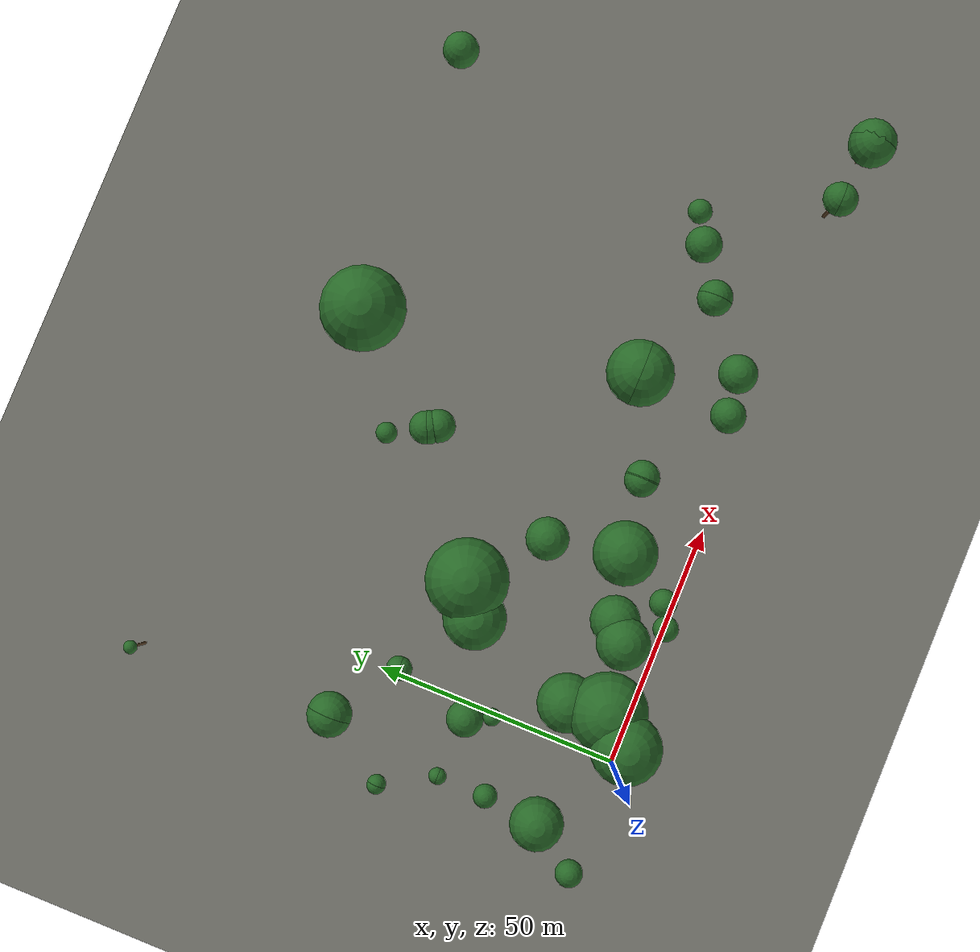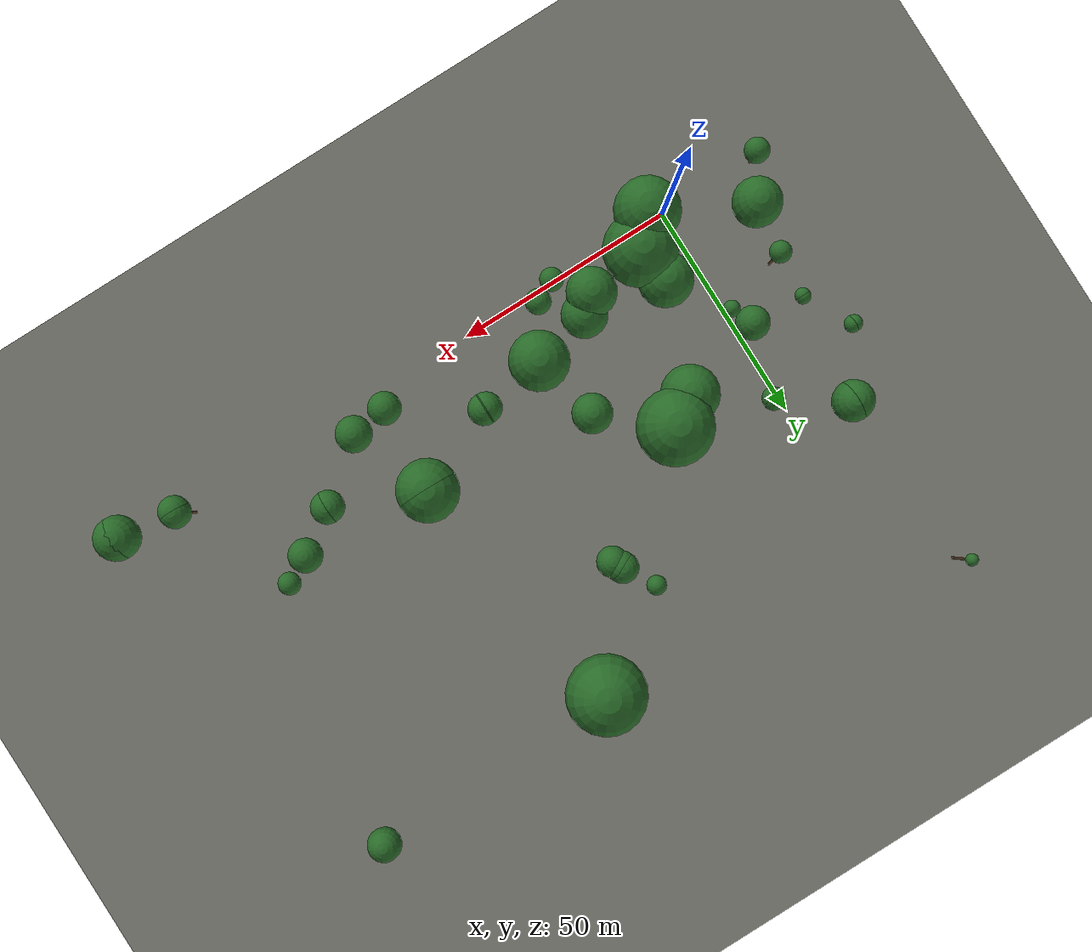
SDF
<sdf version="1.9">
 <world name="uav_arena_bk">
  <model name="ground_plane">
   <static>true</static>
   <link name="link">
    <collision name="collision">
     <geometry><plane><normal>0 0 1</normal><size>1200 1200</size></plane></geometry>
    </collision>
    <visual name="visual">
     <geometry><plane><normal>0 0 1</normal><size>1200 1200</size></plane></geometry>
     <material><ambient>0.35 0.35 0.33 1</ambient><diffuse>0.45 0.45 0.42 1</diffuse></material>
    </visual>
   </link>
  </model>
  <model name="tree_058">
   <static>true</static>
   <pose>-13.384 96.207 0 0 0 0</pose>
   <link name="link">
    <collision name="trunk_collision">
     <pose>0 0 5.465 0 0 0</pose>
     <geometry><cylinder><radius>0.30</radius><length>10.930</length></cylinder></geometry>
    </collision>
    <visual name="trunk_visual">
     <pose>0 0 5.465 0 0 0</pose>
     <geometry><cylinder><radius>0.30</radius><length>10.930</length></cylinder></geometry>
     <material><ambient>0.25 0.18 0.11 1</ambient><diffuse>0.35 0.25 0.15 1</diffuse></material>
    </visual>
    <collision name="canopy_collision">
     <pose>0 0 12.280 0 0 0</pose>
     <geometry><sphere><radius>1.350</radius></sphere></geometry>
    </collision>
    <visual name="canopy_visual">
     <pose>0 0 12.280 0 0 0</pose>
     <geometry><sphere><radius>1.350</radius></sphere></geometry>
     <material><ambient>0.10 0.28 0.10 1</ambient><diffuse>0.16 0.42 0.16 1</diffuse></material>
     <plugin filename="gz-sim-label-system" name="gz::sim::systems::Label"><label>2</label></plugin>
    </visual>
   </link>
  </model>
  <model name="tree_059">
   <static>true</static>
   <pose>120.538 81.481 0 0 0 0</pose>
   <link name="link">
    <collision name="trunk_collision">
     <pose>0 0 3.680 0 0 0</pose>
     <geometry><cylinder><radius>0.30</radius><length>7.360</length></cylinder></geometry>
    </collision>
    <visual name="trunk_visual">
     <pose>0 0 3.680 0 0 0</pose>
     <geometry><cylinder><radius>0.30</radius><length>7.360</length></cylinder></geometry>
     <material><ambient>0.25 0.18 0.11 1</ambient><diffuse>0.35 0.25 0.15 1</diffuse></material>
    </visual>
    <collision name="canopy_collision">
     <pose>0 0 11.000 0 0 0</pose>
     <geometry><sphere><radius>3.640</radius></sphere></geometry>
    </collision>
    <visual name="canopy_visual">
     <pose>0 0 11.000 0 0 0</pose>
     <geometry><sphere><radius>3.640</radius></sphere></geometry>
     <material><ambient>0.10 0.28 0.10 1</ambient><diffuse>0.16 0.42 0.16 1</diffuse></material>
     <plugin filename="gz-sim-label-system" name="gz::sim::systems::Label"><label>2</label></plugin>
    </visual>
   </link>
  </model>
  <model name="tree_061">
   <static>true</static>
   <pose>65.280 80.030 0 0 0 0</pose>
   <link name="link">
    <collision name="trunk_collision">
     <pose>0 0 0.500 0 0 0</pose>
     <geometry><cylinder><radius>0.30</radius><length>1.000</length></cylinder></geometry>
    </collision>
    <visual name="trunk_visual">
     <pose>0 0 0.500 0 0 0</pose>
     <geometry><cylinder><radius>0.30</radius><length>1.000</length></cylinder></geometry>
     <material><ambient>0.25 0.18 0.11 1</ambient><diffuse>0.35 0.25 0.15 1</diffuse></material>
    </visual>
    <collision name="canopy_collision">
     <pose>0 0 9.730 0 0 0</pose>
     <geometry><sphere><radius>8.730</radius></sphere></geometry>
    </collision>
    <visual name="canopy_visual">
     <pose>0 0 9.730 0 0 0</pose>
     <geometry><sphere><radius>8.730</radius></sphere></geometry>
     <material><ambient>0.10 0.28 0.10 1</ambient><diffuse>0.16 0.42 0.16 1</diffuse></material>
     <plugin filename="gz-sim-label-system" name="gz::sim::systems::Label"><label>2</label></plugin>
    </visual>
   </link>
  </model>
  <model name="tree_065">
   <static>true</static>
   <pose>44.205 66.394 0 0 0 0</pose>
   <link name="link">
    <collision name="trunk_collision">
     <pose>0 0 3.025 0 0 0</pose>
     <geometry><cylinder><radius>0.30</radius><length>6.050</length></cylinder></geometry>
    </collision>
    <visual name="trunk_visual">
     <pose>0 0 3.025 0 0 0</pose>
     <geometry><cylinder><radius>0.30</radius><length>6.050</length></cylinder></geometry>
     <material><ambient>0.25 0.18 0.11 1</ambient><diffuse>0.35 0.25 0.15 1</diffuse></material>
    </visual>
    <collision name="canopy_collision">
     <pose>0 0 8.200 0 0 0</pose>
     <geometry><sphere><radius>2.150</radius></sphere></geometry>
    </collision>
    <visual name="canopy_visual">
     <pose>0 0 8.200 0 0 0</pose>
     <geometry><sphere><radius>2.150</radius></sphere></geometry>
     <material><ambient>0.10 0.28 0.10 1</ambient><diffuse>0.16 0.42 0.16 1</diffuse></material>
     <plugin filename="gz-sim-label-system" name="gz::sim::systems::Label"><label>2</label></plugin>
    </visual>
   </link>
  </model>
  <model name="tree_071">
   <static>true</static>
   <pose>48.169 59.623 0 0 0 0</pose>
   <link name="link">
    <collision name="trunk_collision">
     <pose>0 0 1.865 0 0 0</pose>
     <geometry><cylinder><radius>0.30</radius><length>3.730</length></cylinder></geometry>
    </collision>
    <visual name="trunk_visual">
     <pose>0 0 1.865 0 0 0</pose>
     <geometry><cylinder><radius>0.30</radius><length>3.730</length></cylinder></geometry>
     <material><ambient>0.25 0.18 0.11 1</ambient><diffuse>0.35 0.25 0.15 1</diffuse></material>
    </visual>
    <collision name="canopy_collision">
     <pose>0 0 7.130 0 0 0</pose>
     <geometry><sphere><radius>3.400</radius></sphere></geometry>
    </collision>
    <visual name="canopy_visual">
     <pose>0 0 7.130 0 0 0</pose>
     <geometry><sphere><radius>3.400</radius></sphere></geometry>
     <material><ambient>0.10 0.28 0.10 1</ambient><diffuse>0.16 0.42 0.16 1</diffuse></material>
     <plugin filename="gz-sim-label-system" name="gz::sim::systems::Label"><label>2</label></plugin>
    </visual>
   </link>
  </model>
  <model name="tree_072">
   <static>true</static>
   <pose>48.416 59.121 0 0 0 0</pose>
   <link name="link">
    <collision name="trunk_collision">
     <pose>0 0 1.865 0 0 0</pose>
     <geometry><cylinder><radius>0.30</radius><length>3.730</length></cylinder></geometry>
    </collision>
    <visual name="trunk_visual">
     <pose>0 0 1.865 0 0 0</pose>
     <geometry><cylinder><radius>0.30</radius><length>3.730</length></cylinder></geometry>
     <material><ambient>0.25 0.18 0.11 1</ambient><diffuse>0.35 0.25 0.15 1</diffuse></material>
    </visual>
    <collision name="canopy_collision">
     <pose>0 0 7.130 0 0 0</pose>
     <geometry><sphere><radius>3.400</radius></sphere></geometry>
    </collision>
    <visual name="canopy_visual">
     <pose>0 0 7.130 0 0 0</pose>
     <geometry><sphere><radius>3.400</radius></sphere></geometry>
     <material><ambient>0.10 0.28 0.10 1</ambient><diffuse>0.16 0.42 0.16 1</diffuse></material>
     <plugin filename="gz-sim-label-system" name="gz::sim::systems::Label"><label>2</label></plugin>
    </visual>
   </link>
  </model>
  <model name="tree_073">
   <static>true</static>
   <pose>49.407 57.366 0 0 0 0</pose>
   <link name="link">
    <collision name="trunk_collision">
     <pose>0 0 1.855 0 0 0</pose>
     <geometry><cylinder><radius>0.30</radius><length>3.710</length></cylinder></geometry>
    </collision>
    <visual name="trunk_visual">
     <pose>0 0 1.855 0 0 0</pose>
     <geometry><cylinder><radius>0.30</radius><length>3.710</length></cylinder></geometry>
     <material><ambient>0.25 0.18 0.11 1</ambient><diffuse>0.35 0.25 0.15 1</diffuse></material>
    </visual>
    <collision name="canopy_collision">
     <pose>0 0 7.110 0 0 0</pose>
     <geometry><sphere><radius>3.400</radius></sphere></geometry>
    </collision>
    <visual name="canopy_visual">
     <pose>0 0 7.110 0 0 0</pose>
     <geometry><sphere><radius>3.400</radius></sphere></geometry>
     <material><ambient>0.10 0.28 0.10 1</ambient><diffuse>0.16 0.42 0.16 1</diffuse></material>
     <plugin filename="gz-sim-label-system" name="gz::sim::systems::Label"><label>2</label></plugin>
    </visual>
   </link>
  </model>
  <model name="tree_074">
   <static>true</static>
   <pose>-11.603 55.697 0 0 0 0</pose>
   <link name="link">
    <collision name="trunk_collision">
     <pose>0 0 1.600 0 0 0</pose>
     <geometry><cylinder><radius>0.30</radius><length>3.200</length></cylinder></geometry>
    </collision>
    <visual name="trunk_visual">
     <pose>0 0 1.600 0 0 0</pose>
     <geometry><cylinder><radius>0.30</radius><length>3.200</length></cylinder></geometry>
     <material><ambient>0.25 0.18 0.11 1</ambient><diffuse>0.35 0.25 0.15 1</diffuse></material>
    </visual>
    <collision name="canopy_collision">
     <pose>0 0 7.670 0 0 0</pose>
     <geometry><sphere><radius>4.470</radius></sphere></geometry>
    </collision>
    <visual name="canopy_visual">
     <pose>0 0 7.670 0 0 0</pose>
     <geometry><sphere><radius>4.470</radius></sphere></geometry>
     <material><ambient>0.10 0.28 0.10 1</ambient><diffuse>0.16 0.42 0.16 1</diffuse></material>
     <plugin filename="gz-sim-label-system" name="gz::sim::systems::Label"><label>2</label></plugin>
    </visual>
   </link>
  </model>
  <model name="tree_075">
   <static>true</static>
   <pose>-11.353 55.695 0 0 0 0</pose>
   <link name="link">
    <collision name="trunk_collision">
     <pose>0 0 1.600 0 0 0</pose>
     <geometry><cylinder><radius>0.30</radius><length>3.200</length></cylinder></geometry>
    </collision>
    <visual name="trunk_visual">
     <pose>0 0 1.600 0 0 0</pose>
     <geometry><cylinder><radius>0.30</radius><length>3.200</length></cylinder></geometry>
     <material><ambient>0.25 0.18 0.11 1</ambient><diffuse>0.35 0.25 0.15 1</diffuse></material>
    </visual>
    <collision name="canopy_collision">
     <pose>0 0 7.670 0 0 0</pose>
     <geometry><sphere><radius>4.470</radius></sphere></geometry>
    </collision>
    <visual name="canopy_visual">
     <pose>0 0 7.670 0 0 0</pose>
     <geometry><sphere><radius>4.470</radius></sphere></geometry>
     <material><ambient>0.10 0.28 0.10 1</ambient><diffuse>0.16 0.42 0.16 1</diffuse></material>
     <plugin filename="gz-sim-label-system" name="gz::sim::systems::Label"><label>2</label></plugin>
    </visual>
   </link>
  </model>
  <model name="tree_084">
   <static>true</static>
   <pose>1.598 46.625 0 0 0 0</pose>
   <link name="link">
    <collision name="trunk_collision">
     <pose>0 0 0.525 0 0 0</pose>
     <geometry><cylinder><radius>0.30</radius><length>1.050</length></cylinder></geometry>
    </collision>
    <visual name="trunk_visual">
     <pose>0 0 0.525 0 0 0</pose>
     <geometry><cylinder><radius>0.30</radius><length>1.050</length></cylinder></geometry>
     <material><ambient>0.25 0.18 0.11 1</ambient><diffuse>0.35 0.25 0.15 1</diffuse></material>
    </visual>
    <collision name="canopy_collision">
     <pose>0 0 3.550 0 0 0</pose>
     <geometry><sphere><radius>2.500</radius></sphere></geometry>
    </collision>
    <visual name="canopy_visual">
     <pose>0 0 3.550 0 0 0</pose>
     <geometry><sphere><radius>2.500</radius></sphere></geometry>
     <material><ambient>0.10 0.28 0.10 1</ambient><diffuse>0.16 0.42 0.16 1</diffuse></material>
     <plugin filename="gz-sim-label-system" name="gz::sim::systems::Label"><label>2</label></plugin>
    </visual>
   </link>
  </model>
  <model name="tree_085">
   <static>true</static>
   <pose>1.597 46.375 0 0 0 0</pose>
   <link name="link">
    <collision name="trunk_collision">
     <pose>0 0 0.525 0 0 0</pose>
     <geometry><cylinder><radius>0.30</radius><length>1.050</length></cylinder></geometry>
    </collision>
    <visual name="trunk_visual">
     <pose>0 0 0.525 0 0 0</pose>
     <geometry><cylinder><radius>0.30</radius><length>1.050</length></cylinder></geometry>
     <material><ambient>0.25 0.18 0.11 1</ambient><diffuse>0.35 0.25 0.15 1</diffuse></material>
    </visual>
    <collision name="canopy_collision">
     <pose>0 0 3.550 0 0 0</pose>
     <geometry><sphere><radius>2.500</radius></sphere></geometry>
    </collision>
    <visual name="canopy_visual">
     <pose>0 0 3.550 0 0 0</pose>
     <geometry><sphere><radius>2.500</radius></sphere></geometry>
     <material><ambient>0.10 0.28 0.10 1</ambient><diffuse>0.16 0.42 0.16 1</diffuse></material>
     <plugin filename="gz-sim-label-system" name="gz::sim::systems::Label"><label>2</label></plugin>
    </visual>
   </link>
  </model>
  <model name="tree_087">
   <static>true</static>
   <pose>-21.427 42.000 0 0 0 0</pose>
   <link name="link">
    <collision name="trunk_collision">
     <pose>0 0 0.935 0 0 0</pose>
     <geometry><cylinder><radius>0.30</radius><length>1.870</length></cylinder></geometry>
    </collision>
    <visual name="trunk_visual">
     <pose>0 0 0.935 0 0 0</pose>
     <geometry><cylinder><radius>0.30</radius><length>1.870</length></cylinder></geometry>
     <material><ambient>0.25 0.18 0.11 1</ambient><diffuse>0.35 0.25 0.15 1</diffuse></material>
    </visual>
    <collision name="canopy_collision">
     <pose>0 0 3.770 0 0 0</pose>
     <geometry><sphere><radius>1.900</radius></sphere></geometry>
    </collision>
    <visual name="canopy_visual">
     <pose>0 0 3.770 0 0 0</pose>
     <geometry><sphere><radius>1.900</radius></sphere></geometry>
     <material><ambient>0.10 0.28 0.10 1</ambient><diffuse>0.16 0.42 0.16 1</diffuse></material>
     <plugin filename="gz-sim-label-system" name="gz::sim::systems::Label"><label>2</label></plugin>
    </visual>
   </link>
  </model>
  <model name="tree_088">
   <static>true</static>
   <pose>-21.177 41.998 0 0 0 0</pose>
   <link name="link">
    <collision name="trunk_collision">
     <pose>0 0 0.935 0 0 0</pose>
     <geometry><cylinder><radius>0.30</radius><length>1.870</length></cylinder></geometry>
    </collision>
    <visual name="trunk_visual">
     <pose>0 0 0.935 0 0 0</pose>
     <geometry><cylinder><radius>0.30</radius><length>1.870</length></cylinder></geometry>
     <material><ambient>0.25 0.18 0.11 1</ambient><diffuse>0.35 0.25 0.15 1</diffuse></material>
    </visual>
    <collision name="canopy_collision">
     <pose>0 0 3.770 0 0 0</pose>
     <geometry><sphere><radius>1.900</radius></sphere></geometry>
    </collision>
    <visual name="canopy_visual">
     <pose>0 0 3.770 0 0 0</pose>
     <geometry><sphere><radius>1.900</radius></sphere></geometry>
     <material><ambient>0.10 0.28 0.10 1</ambient><diffuse>0.16 0.42 0.16 1</diffuse></material>
     <plugin filename="gz-sim-label-system" name="gz::sim::systems::Label"><label>2</label></plugin>
    </visual>
   </link>
  </model>
  <model name="tree_089">
   <static>true</static>
   <pose>23.315 40.507 0 0 0 0</pose>
   <link name="link">
    <collision name="trunk_collision">
     <pose>0 0 0.500 0 0 0</pose>
     <geometry><cylinder><radius>0.30</radius><length>1.000</length></cylinder></geometry>
    </collision>
    <visual name="trunk_visual">
     <pose>0 0 0.500 0 0 0</pose>
     <geometry><cylinder><radius>0.30</radius><length>1.000</length></cylinder></geometry>
     <material><ambient>0.25 0.18 0.11 1</ambient><diffuse>0.35 0.25 0.15 1</diffuse></material>
    </visual>
    <collision name="canopy_collision">
     <pose>0 0 9.400 0 0 0</pose>
     <geometry><sphere><radius>8.400</radius></sphere></geometry>
    </collision>
    <visual name="canopy_visual">
     <pose>0 0 9.400 0 0 0</pose>
     <geometry><sphere><radius>8.400</radius></sphere></geometry>
     <material><ambient>0.10 0.28 0.10 1</ambient><diffuse>0.16 0.42 0.16 1</diffuse></material>
     <plugin filename="gz-sim-label-system" name="gz::sim::systems::Label"><label>2</label></plugin>
    </visual>
   </link>
  </model>
  <model name="tree_091">
   <static>true</static>
   <pose>16.792 36.293 0 0 0 0</pose>
   <link name="link">
    <collision name="trunk_collision">
     <pose>0 0 0.605 0 0 0</pose>
     <geometry><cylinder><radius>0.30</radius><length>1.210</length></cylinder></geometry>
    </collision>
    <visual name="trunk_visual">
     <pose>0 0 0.605 0 0 0</pose>
     <geometry><cylinder><radius>0.30</radius><length>1.210</length></cylinder></geometry>
     <material><ambient>0.25 0.18 0.11 1</ambient><diffuse>0.35 0.25 0.15 1</diffuse></material>
    </visual>
    <collision name="canopy_collision">
     <pose>0 0 7.610 0 0 0</pose>
     <geometry><sphere><radius>6.400</radius></sphere></geometry>
    </collision>
    <visual name="canopy_visual">
     <pose>0 0 7.610 0 0 0</pose>
     <geometry><sphere><radius>6.400</radius></sphere></geometry>
     <material><ambient>0.10 0.28 0.10 1</ambient><diffuse>0.16 0.42 0.16 1</diffuse></material>
     <plugin filename="gz-sim-label-system" name="gz::sim::systems::Label"><label>2</label></plugin>
    </visual>
   </link>
  </model>
  <model name="tree_094">
   <static>true</static>
   <pose>-14.984 31.465 0 0 0 0</pose>
   <link name="link">
    <collision name="trunk_collision">
     <pose>0 0 1.735 0 0 0</pose>
     <geometry><cylinder><radius>0.30</radius><length>3.470</length></cylinder></geometry>
    </collision>
    <visual name="trunk_visual">
     <pose>0 0 1.735 0 0 0</pose>
     <geometry><cylinder><radius>0.30</radius><length>3.470</length></cylinder></geometry>
     <material><ambient>0.25 0.18 0.11 1</ambient><diffuse>0.35 0.25 0.15 1</diffuse></material>
    </visual>
    <collision name="canopy_collision">
     <pose>0 0 5.150 0 0 0</pose>
     <geometry><sphere><radius>1.680</radius></sphere></geometry>
    </collision>
    <visual name="canopy_visual">
     <pose>0 0 5.150 0 0 0</pose>
     <geometry><sphere><radius>1.680</radius></sphere></geometry>
     <material><ambient>0.10 0.28 0.10 1</ambient><diffuse>0.16 0.42 0.16 1</diffuse></material>
     <plugin filename="gz-sim-label-system" name="gz::sim::systems::Label"><label>2</label></plugin>
    </visual>
   </link>
  </model>
  <model name="tree_095">
   <static>true</static>
   <pose>-14.986 31.215 0 0 0 0</pose>
   <link name="link">
    <collision name="trunk_collision">
     <pose>0 0 1.735 0 0 0</pose>
     <geometry><cylinder><radius>0.30</radius><length>3.470</length></cylinder></geometry>
    </collision>
    <visual name="trunk_visual">
     <pose>0 0 1.735 0 0 0</pose>
     <geometry><cylinder><radius>0.30</radius><length>3.470</length></cylinder></geometry>
     <material><ambient>0.25 0.18 0.11 1</ambient><diffuse>0.35 0.25 0.15 1</diffuse></material>
    </visual>
    <collision name="canopy_collision">
     <pose>0 0 5.150 0 0 0</pose>
     <geometry><sphere><radius>1.680</radius></sphere></geometry>
    </collision>
    <visual name="canopy_visual">
     <pose>0 0 5.150 0 0 0</pose>
     <geometry><sphere><radius>1.680</radius></sphere></geometry>
     <material><ambient>0.10 0.28 0.10 1</ambient><diffuse>0.16 0.42 0.16 1</diffuse></material>
     <plugin filename="gz-sim-label-system" name="gz::sim::systems::Label"><label>2</label></plugin>
    </visual>
   </link>
  </model>
  <model name="tree_096">
   <static>true</static>
   <pose>-1.989 30.644 0 0 0 0</pose>
   <link name="link">
    <collision name="trunk_collision">
     <pose>0 0 2.760 0 0 0</pose>
     <geometry><cylinder><radius>0.30</radius><length>5.520</length></cylinder></geometry>
    </collision>
    <visual name="trunk_visual">
     <pose>0 0 2.760 0 0 0</pose>
     <geometry><cylinder><radius>0.30</radius><length>5.520</length></cylinder></geometry>
     <material><ambient>0.25 0.18 0.11 1</ambient><diffuse>0.35 0.25 0.15 1</diffuse></material>
    </visual>
    <collision name="canopy_collision">
     <pose>0 0 9.210 0 0 0</pose>
     <geometry><sphere><radius>3.690</radius></sphere></geometry>
    </collision>
    <visual name="canopy_visual">
     <pose>0 0 9.210 0 0 0</pose>
     <geometry><sphere><radius>3.690</radius></sphere></geometry>
     <material><ambient>0.10 0.28 0.10 1</ambient><diffuse>0.16 0.42 0.16 1</diffuse></material>
     <plugin filename="gz-sim-label-system" name="gz::sim::systems::Label"><label>2</label></plugin>
    </visual>
   </link>
  </model>
  <model name="tree_098">
   <static>true</static>
   <pose>36.752 28.934 0 0 0 0</pose>
   <link name="link">
    <collision name="trunk_collision">
     <pose>0 0 3.930 0 0 0</pose>
     <geometry><cylinder><radius>0.30</radius><length>7.860</length></cylinder></geometry>
    </collision>
    <visual name="trunk_visual">
     <pose>0 0 3.930 0 0 0</pose>
     <geometry><cylinder><radius>0.30</radius><length>7.860</length></cylinder></geometry>
     <material><ambient>0.25 0.18 0.11 1</ambient><diffuse>0.35 0.25 0.15 1</diffuse></material>
    </visual>
    <collision name="canopy_collision">
     <pose>0 0 12.160 0 0 0</pose>
     <geometry><sphere><radius>4.300</radius></sphere></geometry>
    </collision>
    <visual name="canopy_visual">
     <pose>0 0 12.160 0 0 0</pose>
     <geometry><sphere><radius>4.300</radius></sphere></geometry>
     <material><ambient>0.10 0.28 0.10 1</ambient><diffuse>0.16 0.42 0.16 1</diffuse></material>
     <plugin filename="gz-sim-label-system" name="gz::sim::systems::Label"><label>2</label></plugin>
    </visual>
   </link>
  </model>
  <model name="tree_100">
   <static>true</static>
   <pose>0.486 25.881 0 0 0 0</pose>
   <link name="link">
    <collision name="trunk_collision">
     <pose>0 0 4.530 0 0 0</pose>
     <geometry><cylinder><radius>0.30</radius><length>9.060</length></cylinder></geometry>
    </collision>
    <visual name="trunk_visual">
     <pose>0 0 4.530 0 0 0</pose>
     <geometry><cylinder><radius>0.30</radius><length>9.060</length></cylinder></geometry>
     <material><ambient>0.25 0.18 0.11 1</ambient><diffuse>0.35 0.25 0.15 1</diffuse></material>
    </visual>
    <collision name="canopy_collision">
     <pose>0 0 10.860 0 0 0</pose>
     <geometry><sphere><radius>1.800</radius></sphere></geometry>
    </collision>
    <visual name="canopy_visual">
     <pose>0 0 10.860 0 0 0</pose>
     <geometry><sphere><radius>1.800</radius></sphere></geometry>
     <material><ambient>0.10 0.28 0.10 1</ambient><diffuse>0.16 0.42 0.16 1</diffuse></material>
     <plugin filename="gz-sim-label-system" name="gz::sim::systems::Label"><label>2</label></plugin>
    </visual>
   </link>
  </model>
  <model name="tree_101">
   <static>true</static>
   <pose>109.482 25.040 0 0 0 0</pose>
   <link name="link">
    <collision name="trunk_collision">
     <pose>0 0 1.810 0 0 0</pose>
     <geometry><cylinder><radius>0.30</radius><length>3.620</length></cylinder></geometry>
    </collision>
    <visual name="trunk_visual">
     <pose>0 0 1.810 0 0 0</pose>
     <geometry><cylinder><radius>0.30</radius><length>3.620</length></cylinder></geometry>
     <material><ambient>0.25 0.18 0.11 1</ambient><diffuse>0.35 0.25 0.15 1</diffuse></material>
    </visual>
    <collision name="canopy_collision">
     <pose>0 0 6.120 0 0 0</pose>
     <geometry><sphere><radius>2.500</radius></sphere></geometry>
    </collision>
    <visual name="canopy_visual">
     <pose>0 0 6.120 0 0 0</pose>
     <geometry><sphere><radius>2.500</radius></sphere></geometry>
     <material><ambient>0.10 0.28 0.10 1</ambient><diffuse>0.16 0.42 0.16 1</diffuse></material>
     <plugin filename="gz-sim-label-system" name="gz::sim::systems::Label"><label>2</label></plugin>
    </visual>
   </link>
  </model>
  <model name="tree_102">
   <static>true</static>
   <pose>74.227 24.231 0 0 0 0</pose>
   <link name="link">
    <collision name="trunk_collision">
     <pose>0 0 0.995 0 0 0</pose>
     <geometry><cylinder><radius>0.30</radius><length>1.990</length></cylinder></geometry>
    </collision>
    <visual name="trunk_visual">
     <pose>0 0 0.995 0 0 0</pose>
     <geometry><cylinder><radius>0.30</radius><length>1.990</length></cylinder></geometry>
     <material><ambient>0.25 0.18 0.11 1</ambient><diffuse>0.35 0.25 0.15 1</diffuse></material>
    </visual>
    <collision name="canopy_collision">
     <pose>0 0 8.740 0 0 0</pose>
     <geometry><sphere><radius>6.750</radius></sphere></geometry>
    </collision>
    <visual name="canopy_visual">
     <pose>0 0 8.740 0 0 0</pose>
     <geometry><sphere><radius>6.750</radius></sphere></geometry>
     <material><ambient>0.10 0.28 0.10 1</ambient><diffuse>0.16 0.42 0.16 1</diffuse></material>
     <plugin filename="gz-sim-label-system" name="gz::sim::systems::Label"><label>2</label></plugin>
    </visual>
   </link>
  </model>
  <model name="tree_104">
   <static>true</static>
   <pose>74.226 23.981 0 0 0 0</pose>
   <link name="link">
    <collision name="trunk_collision">
     <pose>0 0 0.995 0 0 0</pose>
     <geometry><cylinder><radius>0.30</radius><length>1.990</length></cylinder></geometry>
    </collision>
    <visual name="trunk_visual">
     <pose>0 0 0.995 0 0 0</pose>
     <geometry><cylinder><radius>0.30</radius><length>1.990</length></cylinder></geometry>
     <material><ambient>0.25 0.18 0.11 1</ambient><diffuse>0.35 0.25 0.15 1</diffuse></material>
    </visual>
    <collision name="canopy_collision">
     <pose>0 0 8.740 0 0 0</pose>
     <geometry><sphere><radius>6.750</radius></sphere></geometry>
    </collision>
    <visual name="canopy_visual">
     <pose>0 0 8.740 0 0 0</pose>
     <geometry><sphere><radius>6.750</radius></sphere></geometry>
     <material><ambient>0.10 0.28 0.10 1</ambient><diffuse>0.16 0.42 0.16 1</diffuse></material>
     <plugin filename="gz-sim-label-system" name="gz::sim::systems::Label"><label>2</label></plugin>
    </visual>
   </link>
  </model>
  <model name="tree_105">
   <static>true</static>
   <pose>103.464 21.823 0 0 0 0</pose>
   <link name="link">
    <collision name="trunk_collision">
     <pose>0 0 1.275 0 0 0</pose>
     <geometry><cylinder><radius>0.30</radius><length>2.550</length></cylinder></geometry>
    </collision>
    <visual name="trunk_visual">
     <pose>0 0 1.275 0 0 0</pose>
     <geometry><cylinder><radius>0.30</radius><length>2.550</length></cylinder></geometry>
     <material><ambient>0.25 0.18 0.11 1</ambient><diffuse>0.35 0.25 0.15 1</diffuse></material>
    </visual>
    <collision name="canopy_collision">
     <pose>0 0 6.300 0 0 0</pose>
     <geometry><sphere><radius>3.750</radius></sphere></geometry>
    </collision>
    <visual name="canopy_visual">
     <pose>0 0 6.300 0 0 0</pose>
     <geometry><sphere><radius>3.750</radius></sphere></geometry>
     <material><ambient>0.10 0.28 0.10 1</ambient><diffuse>0.16 0.42 0.16 1</diffuse></material>
     <plugin filename="gz-sim-label-system" name="gz::sim::systems::Label"><label>2</label></plugin>
    </visual>
   </link>
  </model>
  <model name="tree_106">
   <static>true</static>
   <pose>-13.788 21.458 0 0 0 0</pose>
   <link name="link">
    <collision name="trunk_collision">
     <pose>0 0 5.345 0 0 0</pose>
     <geometry><cylinder><radius>0.30</radius><length>10.690</length></cylinder></geometry>
    </collision>
    <visual name="trunk_visual">
     <pose>0 0 5.345 0 0 0</pose>
     <geometry><cylinder><radius>0.30</radius><length>10.690</length></cylinder></geometry>
     <material><ambient>0.25 0.18 0.11 1</ambient><diffuse>0.35 0.25 0.15 1</diffuse></material>
    </visual>
    <collision name="canopy_collision">
     <pose>0 0 13.060 0 0 0</pose>
     <geometry><sphere><radius>2.370</radius></sphere></geometry>
    </collision>
    <visual name="canopy_visual">
     <pose>0 0 13.060 0 0 0</pose>
     <geometry><sphere><radius>2.370</radius></sphere></geometry>
     <material><ambient>0.10 0.28 0.10 1</ambient><diffuse>0.16 0.42 0.16 1</diffuse></material>
     <plugin filename="gz-sim-label-system" name="gz::sim::systems::Label"><label>2</label></plugin>
    </visual>
   </link>
  </model>
  <model name="tree_109">
   <static>true</static>
   <pose>93.682 15.876 0 0 0 0</pose>
   <link name="link">
    <collision name="trunk_collision">
     <pose>0 0 2.460 0 0 0</pose>
     <geometry><cylinder><radius>0.30</radius><length>4.920</length></cylinder></geometry>
    </collision>
    <visual name="trunk_visual">
     <pose>0 0 2.460 0 0 0</pose>
     <geometry><cylinder><radius>0.30</radius><length>4.920</length></cylinder></geometry>
     <material><ambient>0.25 0.18 0.11 1</ambient><diffuse>0.35 0.25 0.15 1</diffuse></material>
    </visual>
    <collision name="canopy_collision">
     <pose>0 0 8.500 0 0 0</pose>
     <geometry><sphere><radius>3.580</radius></sphere></geometry>
    </collision>
    <visual name="canopy_visual">
     <pose>0 0 8.500 0 0 0</pose>
     <geometry><sphere><radius>3.580</radius></sphere></geometry>
     <material><ambient>0.10 0.28 0.10 1</ambient><diffuse>0.16 0.42 0.16 1</diffuse></material>
     <plugin filename="gz-sim-label-system" name="gz::sim::systems::Label"><label>2</label></plugin>
    </visual>
   </link>
  </model>
  <model name="tree_110">
   <static>true</static>
   <pose>93.932 15.874 0 0 0 0</pose>
   <link name="link">
    <collision name="trunk_collision">
     <pose>0 0 2.460 0 0 0</pose>
     <geometry><cylinder><radius>0.30</radius><length>4.920</length></cylinder></geometry>
    </collision>
    <visual name="trunk_visual">
     <pose>0 0 2.460 0 0 0</pose>
     <geometry><cylinder><radius>0.30</radius><length>4.920</length></cylinder></geometry>
     <material><ambient>0.25 0.18 0.11 1</ambient><diffuse>0.35 0.25 0.15 1</diffuse></material>
    </visual>
    <collision name="canopy_collision">
     <pose>0 0 8.500 0 0 0</pose>
     <geometry><sphere><radius>3.580</radius></sphere></geometry>
    </collision>
    <visual name="canopy_visual">
     <pose>0 0 8.500 0 0 0</pose>
     <geometry><sphere><radius>3.580</radius></sphere></geometry>
     <material><ambient>0.10 0.28 0.10 1</ambient><diffuse>0.16 0.42 0.16 1</diffuse></material>
     <plugin filename="gz-sim-label-system" name="gz::sim::systems::Label"><label>2</label></plugin>
    </visual>
   </link>
  </model>
  <model name="tree_111">
   <static>true</static>
   <pose>54.682 15.837 0 0 0 0</pose>
   <link name="link">
    <collision name="trunk_collision">
     <pose>0 0 1.815 0 0 0</pose>
     <geometry><cylinder><radius>0.30</radius><length>3.630</length></cylinder></geometry>
    </collision>
    <visual name="trunk_visual">
     <pose>0 0 1.815 0 0 0</pose>
     <geometry><cylinder><radius>0.30</radius><length>3.630</length></cylinder></geometry>
     <material><ambient>0.25 0.18 0.11 1</ambient><diffuse>0.35 0.25 0.15 1</diffuse></material>
    </visual>
    <collision name="canopy_collision">
     <pose>0 0 7.130 0 0 0</pose>
     <geometry><sphere><radius>3.500</radius></sphere></geometry>
    </collision>
    <visual name="canopy_visual">
     <pose>0 0 7.130 0 0 0</pose>
     <geometry><sphere><radius>3.500</radius></sphere></geometry>
     <material><ambient>0.10 0.28 0.10 1</ambient><diffuse>0.16 0.42 0.16 1</diffuse></material>
     <plugin filename="gz-sim-label-system" name="gz::sim::systems::Label"><label>2</label></plugin>
    </visual>
   </link>
  </model>
  <model name="tree_112">
   <static>true</static>
   <pose>54.932 15.836 0 0 0 0</pose>
   <link name="link">
    <collision name="trunk_collision">
     <pose>0 0 1.815 0 0 0</pose>
     <geometry><cylinder><radius>0.30</radius><length>3.630</length></cylinder></geometry>
    </collision>
    <visual name="trunk_visual">
     <pose>0 0 1.815 0 0 0</pose>
     <geometry><cylinder><radius>0.30</radius><length>3.630</length></cylinder></geometry>
     <material><ambient>0.25 0.18 0.11 1</ambient><diffuse>0.35 0.25 0.15 1</diffuse></material>
    </visual>
    <collision name="canopy_collision">
     <pose>0 0 7.130 0 0 0</pose>
     <geometry><sphere><radius>3.500</radius></sphere></geometry>
    </collision>
    <visual name="canopy_visual">
     <pose>0 0 7.130 0 0 0</pose>
     <geometry><sphere><radius>3.500</radius></sphere></geometry>
     <material><ambient>0.10 0.28 0.10 1</ambient><diffuse>0.16 0.42 0.16 1</diffuse></material>
     <plugin filename="gz-sim-label-system" name="gz::sim::systems::Label"><label>2</label></plugin>
    </visual>
   </link>
  </model>
  <model name="tree_113">
   <static>true</static>
   <pose>55.182 15.834 0 0 0 0</pose>
   <link name="link">
    <collision name="trunk_collision">
     <pose>0 0 1.815 0 0 0</pose>
     <geometry><cylinder><radius>0.30</radius><length>3.630</length></cylinder></geometry>
    </collision>
    <visual name="trunk_visual">
     <pose>0 0 1.815 0 0 0</pose>
     <geometry><cylinder><radius>0.30</radius><length>3.630</length></cylinder></geometry>
     <material><ambient>0.25 0.18 0.11 1</ambient><diffuse>0.35 0.25 0.15 1</diffuse></material>
    </visual>
    <collision name="canopy_collision">
     <pose>0 0 7.130 0 0 0</pose>
     <geometry><sphere><radius>3.500</radius></sphere></geometry>
    </collision>
    <visual name="canopy_visual">
     <pose>0 0 7.130 0 0 0</pose>
     <geometry><sphere><radius>3.500</radius></sphere></geometry>
     <material><ambient>0.10 0.28 0.10 1</ambient><diffuse>0.16 0.42 0.16 1</diffuse></material>
     <plugin filename="gz-sim-label-system" name="gz::sim::systems::Label"><label>2</label></plugin>
    </visual>
   </link>
  </model>
  <model name="tree_116">
   <static>true</static>
   <pose>39.918 13.417 0 0 0 0</pose>
   <link name="link">
    <collision name="trunk_collision">
     <pose>0 0 0.500 0 0 0</pose>
     <geometry><cylinder><radius>0.30</radius><length>1.000</length></cylinder></geometry>
    </collision>
    <visual name="trunk_visual">
     <pose>0 0 0.500 0 0 0</pose>
     <geometry><cylinder><radius>0.30</radius><length>1.000</length></cylinder></geometry>
     <material><ambient>0.25 0.18 0.11 1</ambient><diffuse>0.35 0.25 0.15 1</diffuse></material>
    </visual>
    <collision name="canopy_collision">
     <pose>0 0 7.560 0 0 0</pose>
     <geometry><sphere><radius>6.560</radius></sphere></geometry>
    </collision>
    <visual name="canopy_visual">
     <pose>0 0 7.560 0 0 0</pose>
     <geometry><sphere><radius>6.560</radius></sphere></geometry>
     <material><ambient>0.10 0.28 0.10 1</ambient><diffuse>0.16 0.42 0.16 1</diffuse></material>
     <plugin filename="gz-sim-label-system" name="gz::sim::systems::Label"><label>2</label></plugin>
    </visual>
   </link>
  </model>
  <model name="tree_117">
   <static>true</static>
   <pose>8.166 13.089 0 0 0 0</pose>
   <link name="link">
    <collision name="trunk_collision">
     <pose>0 0 0.500 0 0 0</pose>
     <geometry><cylinder><radius>0.30</radius><length>1.000</length></cylinder></geometry>
    </collision>
    <visual name="trunk_visual">
     <pose>0 0 0.500 0 0 0</pose>
     <geometry><cylinder><radius>0.30</radius><length>1.000</length></cylinder></geometry>
     <material><ambient>0.25 0.18 0.11 1</ambient><diffuse>0.35 0.25 0.15 1</diffuse></material>
    </visual>
    <collision name="canopy_collision">
     <pose>0 0 7.000 0 0 0</pose>
     <geometry><sphere><radius>6.000</radius></sphere></geometry>
    </collision>
    <visual name="canopy_visual">
     <pose>0 0 7.000 0 0 0</pose>
     <geometry><sphere><radius>6.000</radius></sphere></geometry>
     <material><ambient>0.10 0.28 0.10 1</ambient><diffuse>0.16 0.42 0.16 1</diffuse></material>
     <plugin filename="gz-sim-label-system" name="gz::sim::systems::Label"><label>2</label></plugin>
    </visual>
   </link>
  </model>
  <model name="tree_118">
   <static>true</static>
   <pose>26.902 10.488 0 0 0 0</pose>
   <link name="link">
    <collision name="trunk_collision">
     <pose>0 0 2.010 0 0 0</pose>
     <geometry><cylinder><radius>0.30</radius><length>4.020</length></cylinder></geometry>
    </collision>
    <visual name="trunk_visual">
     <pose>0 0 2.010 0 0 0</pose>
     <geometry><cylinder><radius>0.30</radius><length>4.020</length></cylinder></geometry>
     <material><ambient>0.25 0.18 0.11 1</ambient><diffuse>0.35 0.25 0.15 1</diffuse></material>
    </visual>
    <collision name="canopy_collision">
     <pose>0 0 9.020 0 0 0</pose>
     <geometry><sphere><radius>5.000</radius></sphere></geometry>
    </collision>
    <visual name="canopy_visual">
     <pose>0 0 9.020 0 0 0</pose>
     <geometry><sphere><radius>5.000</radius></sphere></geometry>
     <material><ambient>0.10 0.28 0.10 1</ambient><diffuse>0.16 0.42 0.16 1</diffuse></material>
     <plugin filename="gz-sim-label-system" name="gz::sim::systems::Label"><label>2</label></plugin>
    </visual>
   </link>
  </model>
  <model name="tree_119">
   <static>true</static>
   <pose>-14.598 10.462 0 0 0 0</pose>
   <link name="link">
    <collision name="trunk_collision">
     <pose>0 0 5.040 0 0 0</pose>
     <geometry><cylinder><radius>0.30</radius><length>10.080</length></cylinder></geometry>
    </collision>
    <visual name="trunk_visual">
     <pose>0 0 5.040 0 0 0</pose>
     <geometry><cylinder><radius>0.30</radius><length>10.080</length></cylinder></geometry>
     <material><ambient>0.25 0.18 0.11 1</ambient><diffuse>0.35 0.25 0.15 1</diffuse></material>
    </visual>
    <collision name="canopy_collision">
     <pose>0 0 15.330 0 0 0</pose>
     <geometry><sphere><radius>5.250</radius></sphere></geometry>
    </collision>
    <visual name="canopy_visual">
     <pose>0 0 15.330 0 0 0</pose>
     <geometry><sphere><radius>5.250</radius></sphere></geometry>
     <material><ambient>0.10 0.28 0.10 1</ambient><diffuse>0.16 0.42 0.16 1</diffuse></material>
     <plugin filename="gz-sim-label-system" name="gz::sim::systems::Label"><label>2</label></plugin>
    </visual>
   </link>
  </model>
  <model name="tree_123">
   <static>true</static>
   <pose>23.386 7.507 0 0 0 0</pose>
   <link name="link">
    <collision name="trunk_collision">
     <pose>0 0 2.940 0 0 0</pose>
     <geometry><cylinder><radius>0.30</radius><length>5.880</length></cylinder></geometry>
    </collision>
    <visual name="trunk_visual">
     <pose>0 0 2.940 0 0 0</pose>
     <geometry><cylinder><radius>0.30</radius><length>5.880</length></cylinder></geometry>
     <material><ambient>0.25 0.18 0.11 1</ambient><diffuse>0.35 0.25 0.15 1</diffuse></material>
    </visual>
    <collision name="canopy_collision">
     <pose>0 0 11.270 0 0 0</pose>
     <geometry><sphere><radius>5.390</radius></sphere></geometry>
    </collision>
    <visual name="canopy_visual">
     <pose>0 0 11.270 0 0 0</pose>
     <geometry><sphere><radius>5.390</radius></sphere></geometry>
     <material><ambient>0.10 0.28 0.10 1</ambient><diffuse>0.16 0.42 0.16 1</diffuse></material>
     <plugin filename="gz-sim-label-system" name="gz::sim::systems::Label"><label>2</label></plugin>
    </visual>
   </link>
  </model>
  <model name="tree_124">
   <static>true</static>
   <pose>80.631 6.446 0 0 0 0</pose>
   <link name="link">
    <collision name="trunk_collision">
     <pose>0 0 4.675 0 0 0</pose>
     <geometry><cylinder><radius>0.30</radius><length>9.350</length></cylinder></geometry>
    </collision>
    <visual name="trunk_visual">
     <pose>0 0 4.675 0 0 0</pose>
     <geometry><cylinder><radius>0.30</radius><length>9.350</length></cylinder></geometry>
     <material><ambient>0.25 0.18 0.11 1</ambient><diffuse>0.35 0.25 0.15 1</diffuse></material>
    </visual>
    <collision name="canopy_collision">
     <pose>0 0 13.260 0 0 0</pose>
     <geometry><sphere><radius>3.910</radius></sphere></geometry>
    </collision>
    <visual name="canopy_visual">
     <pose>0 0 13.260 0 0 0</pose>
     <geometry><sphere><radius>3.910</radius></sphere></geometry>
     <material><ambient>0.10 0.28 0.10 1</ambient><diffuse>0.16 0.42 0.16 1</diffuse></material>
     <plugin filename="gz-sim-label-system" name="gz::sim::systems::Label"><label>2</label></plugin>
    </visual>
   </link>
  </model>
  <model name="tree_126">
   <static>true</static>
   <pose>72.623 4.990 0 0 0 0</pose>
   <link name="link">
    <collision name="trunk_collision">
     <pose>0 0 3.645 0 0 0</pose>
     <geometry><cylinder><radius>0.30</radius><length>7.290</length></cylinder></geometry>
    </collision>
    <visual name="trunk_visual">
     <pose>0 0 3.645 0 0 0</pose>
     <geometry><cylinder><radius>0.30</radius><length>7.290</length></cylinder></geometry>
     <material><ambient>0.25 0.18 0.11 1</ambient><diffuse>0.35 0.25 0.15 1</diffuse></material>
    </visual>
    <collision name="canopy_collision">
     <pose>0 0 10.870 0 0 0</pose>
     <geometry><sphere><radius>3.580</radius></sphere></geometry>
    </collision>
    <visual name="canopy_visual">
     <pose>0 0 10.870 0 0 0</pose>
     <geometry><sphere><radius>3.580</radius></sphere></geometry>
     <material><ambient>0.10 0.28 0.10 1</ambient><diffuse>0.16 0.42 0.16 1</diffuse></material>
     <plugin filename="gz-sim-label-system" name="gz::sim::systems::Label"><label>2</label></plugin>
    </visual>
   </link>
  </model>
  <model name="tree_127">
   <static>true</static>
   <pose>9.623 5.081 0 0 0 0</pose>
   <link name="link">
    <collision name="trunk_collision">
     <pose>0 0 0.500 0 0 0</pose>
     <geometry><cylinder><radius>0.30</radius><length>1.000</length></cylinder></geometry>
    </collision>
    <visual name="trunk_visual">
     <pose>0 0 0.500 0 0 0</pose>
     <geometry><cylinder><radius>0.30</radius><length>1.000</length></cylinder></geometry>
     <material><ambient>0.25 0.18 0.11 1</ambient><diffuse>0.35 0.25 0.15 1</diffuse></material>
    </visual>
    <collision name="canopy_collision">
     <pose>0 0 9.070 0 0 0</pose>
     <geometry><sphere><radius>8.070</radius></sphere></geometry>
    </collision>
    <visual name="canopy_visual">
     <pose>0 0 9.070 0 0 0</pose>
     <geometry><sphere><radius>8.070</radius></sphere></geometry>
     <material><ambient>0.10 0.28 0.10 1</ambient><diffuse>0.16 0.42 0.16 1</diffuse></material>
     <plugin filename="gz-sim-label-system" name="gz::sim::systems::Label"><label>2</label></plugin>
    </visual>
   </link>
  </model>
  <model name="tree_129">
   <static>true</static>
   <pose>33.612 2.951 0 0 0 0</pose>
   <link name="link">
    <collision name="trunk_collision">
     <pose>0 0 3.155 0 0 0</pose>
     <geometry><cylinder><radius>0.30</radius><length>6.310</length></cylinder></geometry>
    </collision>
    <visual name="trunk_visual">
     <pose>0 0 3.155 0 0 0</pose>
     <geometry><cylinder><radius>0.30</radius><length>6.310</length></cylinder></geometry>
     <material><ambient>0.25 0.18 0.11 1</ambient><diffuse>0.35 0.25 0.15 1</diffuse></material>
    </visual>
    <collision name="canopy_collision">
     <pose>0 0 9.110 0 0 0</pose>
     <geometry><sphere><radius>2.800</radius></sphere></geometry>
    </collision>
    <visual name="canopy_visual">
     <pose>0 0 9.110 0 0 0</pose>
     <geometry><sphere><radius>2.800</radius></sphere></geometry>
     <material><ambient>0.10 0.28 0.10 1</ambient><diffuse>0.16 0.42 0.16 1</diffuse></material>
     <plugin filename="gz-sim-label-system" name="gz::sim::systems::Label"><label>2</label></plugin>
    </visual>
   </link>
  </model>
  <model name="tree_130">
   <static>true</static>
   <pose>119.602 0.985 0 0 0 0</pose>
   <link name="link">
    <collision name="trunk_collision">
     <pose>0 0 6.355 0 0 0</pose>
     <geometry><cylinder><radius>0.30</radius><length>12.710</length></cylinder></geometry>
    </collision>
    <visual name="trunk_visual">
     <pose>0 0 6.355 0 0 0</pose>
     <geometry><cylinder><radius>0.30</radius><length>12.710</length></cylinder></geometry>
     <material><ambient>0.25 0.18 0.11 1</ambient><diffuse>0.35 0.25 0.15 1</diffuse></material>
    </visual>
    <collision name="canopy_collision">
     <pose>0 0 16.060 0 0 0</pose>
     <geometry><sphere><radius>3.350</radius></sphere></geometry>
    </collision>
    <visual name="canopy_visual">
     <pose>0 0 16.060 0 0 0</pose>
     <geometry><sphere><radius>3.350</radius></sphere></geometry>
     <material><ambient>0.10 0.28 0.10 1</ambient><diffuse>0.16 0.42 0.16 1</diffuse></material>
     <plugin filename="gz-sim-label-system" name="gz::sim::systems::Label"><label>2</label></plugin>
    </visual>
   </link>
  </model>
  <model name="tree_131">
   <static>true</static>
   <pose>119.600 0.735 0 0 0 0</pose>
   <link name="link">
    <collision name="trunk_collision">
     <pose>0 0 6.355 0 0 0</pose>
     <geometry><cylinder><radius>0.30</radius><length>12.710</length></cylinder></geometry>
    </collision>
    <visual name="trunk_visual">
     <pose>0 0 6.355 0 0 0</pose>
     <geometry><cylinder><radius>0.30</radius><length>12.710</length></cylinder></geometry>
     <material><ambient>0.25 0.18 0.11 1</ambient><diffuse>0.35 0.25 0.15 1</diffuse></material>
    </visual>
    <collision name="canopy_collision">
     <pose>0 0 16.060 0 0 0</pose>
     <geometry><sphere><radius>3.350</radius></sphere></geometry>
    </collision>
    <visual name="canopy_visual">
     <pose>0 0 16.060 0 0 0</pose>
     <geometry><sphere><radius>3.350</radius></sphere></geometry>
     <material><ambient>0.10 0.28 0.10 1</ambient><diffuse>0.16 0.42 0.16 1</diffuse></material>
     <plugin filename="gz-sim-label-system" name="gz::sim::systems::Label"><label>2</label></plugin>
    </visual>
   </link>
  </model>
  <model name="tree_133">
   <static>true</static>
   <pose>29.101 0.976 0 0 0 0</pose>
   <link name="link">
    <collision name="trunk_collision">
     <pose>0 0 4.770 0 0 0</pose>
     <geometry><cylinder><radius>0.30</radius><length>9.540</length></cylinder></geometry>
    </collision>
    <visual name="trunk_visual">
     <pose>0 0 4.770 0 0 0</pose>
     <geometry><cylinder><radius>0.30</radius><length>9.540</length></cylinder></geometry>
     <material><ambient>0.25 0.18 0.11 1</ambient><diffuse>0.35 0.25 0.15 1</diffuse></material>
    </visual>
    <collision name="canopy_collision">
     <pose>0 0 12.090 0 0 0</pose>
     <geometry><sphere><radius>2.550</radius></sphere></geometry>
    </collision>
    <visual name="canopy_visual">
     <pose>0 0 12.090 0 0 0</pose>
     <geometry><sphere><radius>2.550</radius></sphere></geometry>
     <material><ambient>0.10 0.28 0.10 1</ambient><diffuse>0.16 0.42 0.16 1</diffuse></material>
     <plugin filename="gz-sim-label-system" name="gz::sim::systems::Label"><label>2</label></plugin>
    </visual>
   </link>
  </model>
  <model name="tree_136">
   <static>true</static>
   <pose>-22.152 0.503 0 0 0 0</pose>
   <link name="link">
    <collision name="trunk_collision">
     <pose>0 0 3.075 0 0 0</pose>
     <geometry><cylinder><radius>0.30</radius><length>6.150</length></cylinder></geometry>
    </collision>
    <visual name="trunk_visual">
     <pose>0 0 3.075 0 0 0</pose>
     <geometry><cylinder><radius>0.30</radius><length>6.150</length></cylinder></geometry>
     <material><ambient>0.25 0.18 0.11 1</ambient><diffuse>0.35 0.25 0.15 1</diffuse></material>
    </visual>
    <collision name="canopy_collision">
     <pose>0 0 8.910 0 0 0</pose>
     <geometry><sphere><radius>2.760</radius></sphere></geometry>
    </collision>
    <visual name="canopy_visual">
     <pose>0 0 8.910 0 0 0</pose>
     <geometry><sphere><radius>2.760</radius></sphere></geometry>
     <material><ambient>0.10 0.28 0.10 1</ambient><diffuse>0.16 0.42 0.16 1</diffuse></material>
     <plugin filename="gz-sim-label-system" name="gz::sim::systems::Label"><label>2</label></plugin>
    </visual>
   </link>
  </model>
  <model name="tree_137">
   <static>true</static>
   <pose>132.590 -1.085 0 0 0 0</pose>
   <link name="link">
    <collision name="trunk_collision">
     <pose>0 0 4.960 0 0 0</pose>
     <geometry><cylinder><radius>0.30</radius><length>9.920</length></cylinder></geometry>
    </collision>
    <visual name="trunk_visual">
     <pose>0 0 4.960 0 0 0</pose>
     <geometry><cylinder><radius>0.30</radius><length>9.920</length></cylinder></geometry>
     <material><ambient>0.25 0.18 0.11 1</ambient><diffuse>0.35 0.25 0.15 1</diffuse></material>
    </visual>
    <collision name="canopy_collision">
     <pose>0 0 14.670 0 0 0</pose>
     <geometry><sphere><radius>4.750</radius></sphere></geometry>
    </collision>
    <visual name="canopy_visual">
     <pose>0 0 14.670 0 0 0</pose>
     <geometry><sphere><radius>4.750</radius></sphere></geometry>
     <material><ambient>0.10 0.28 0.10 1</ambient><diffuse>0.16 0.42 0.16 1</diffuse></material>
     <plugin filename="gz-sim-label-system" name="gz::sim::systems::Label"><label>2</label></plugin>
    </visual>
   </link>
  </model>
  <model name="tree_138">
   <static>true</static>
   <pose>132.840 -1.087 0 0 0 0</pose>
   <link name="link">
    <collision name="trunk_collision">
     <pose>0 0 4.950 0 0 0</pose>
     <geometry><cylinder><radius>0.30</radius><length>9.900</length></cylinder></geometry>
    </collision>
    <visual name="trunk_visual">
     <pose>0 0 4.950 0 0 0</pose>
     <geometry><cylinder><radius>0.30</radius><length>9.900</length></cylinder></geometry>
     <material><ambient>0.25 0.18 0.11 1</ambient><diffuse>0.35 0.25 0.15 1</diffuse></material>
    </visual>
    <collision name="canopy_collision">
     <pose>0 0 14.650 0 0 0</pose>
     <geometry><sphere><radius>4.750</radius></sphere></geometry>
    </collision>
    <visual name="canopy_visual">
     <pose>0 0 14.650 0 0 0</pose>
     <geometry><sphere><radius>4.750</radius></sphere></geometry>
     <material><ambient>0.10 0.28 0.10 1</ambient><diffuse>0.16 0.42 0.16 1</diffuse></material>
     <plugin filename="gz-sim-label-system" name="gz::sim::systems::Label"><label>2</label></plugin>
    </visual>
   </link>
  </model>
  <model name="tree_143">
   <static>true</static>
   <pose>4.592 -0.642 0 0 0 0</pose>
   <link name="link">
    <collision name="trunk_collision">
     <pose>0 0 2.320 0 0 0</pose>
     <geometry><cylinder><radius>0.30</radius><length>4.640</length></cylinder></geometry>
    </collision>
    <visual name="trunk_visual">
     <pose>0 0 2.320 0 0 0</pose>
     <geometry><cylinder><radius>0.30</radius><length>4.640</length></cylinder></geometry>
     <material><ambient>0.25 0.18 0.11 1</ambient><diffuse>0.35 0.25 0.15 1</diffuse></material>
    </visual>
    <collision name="canopy_collision">
     <pose>0 0 11.790 0 0 0</pose>
     <geometry><sphere><radius>7.150</radius></sphere></geometry>
    </collision>
    <visual name="canopy_visual">
     <pose>0 0 11.790 0 0 0</pose>
     <geometry><sphere><radius>7.150</radius></sphere></geometry>
     <material><ambient>0.10 0.28 0.10 1</ambient><diffuse>0.16 0.42 0.16 1</diffuse></material>
     <plugin filename="gz-sim-label-system" name="gz::sim::systems::Label"><label>2</label></plugin>
    </visual>
   </link>
  </model>
 </world>
</sdf>
